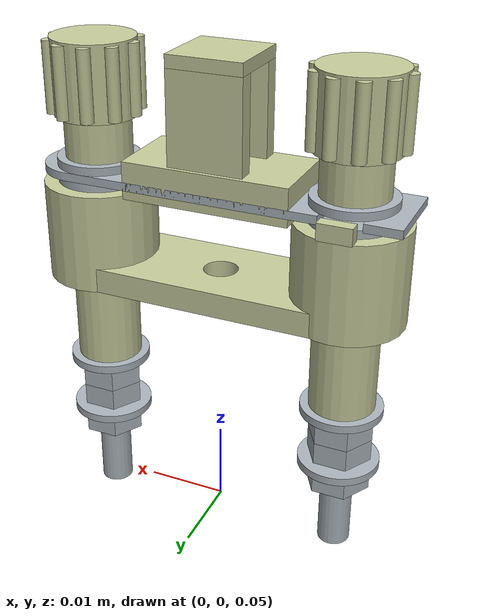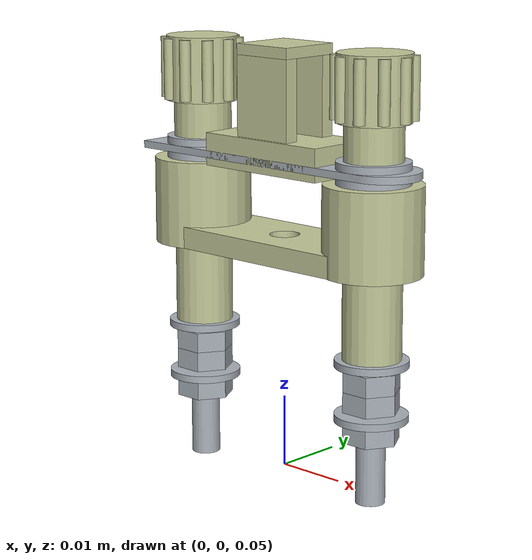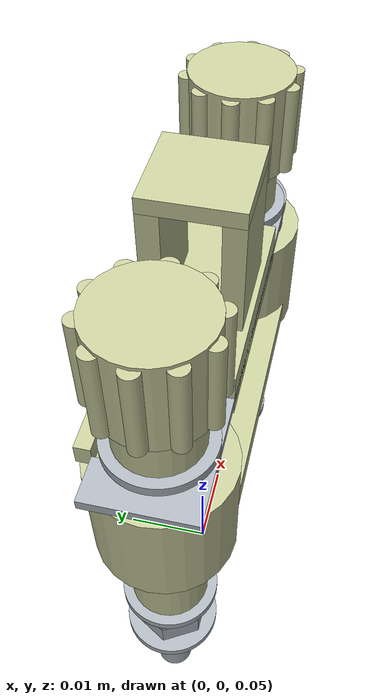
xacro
<?xml version="1.0"?>
<robot name="yaban" xmlns:xacro="http://www.ros.org/wiki/xacro">
  <xacro:arg name="world_fixed" default="true"/>
  <xacro:arg name="enable_plugin" default="true"/>
  <xacro:arg name="demo_control" default="false"/>
  <xacro:arg name="prefix" default="yaban_"/>
  <xacro:arg name="robot_namespace" default="/yaban"/>
  <xacro:arg name="mount_xyz" default="0 0 0.08"/>
  <xacro:arg name="mount_rpy" default="0 0 0"/>
  <xacro:include filename="$(find yaban_gazebo)/urdf/yaban_macro.xacro"/>
  <link name="$(arg prefix)mount_link"/>
  <xacro:if value="$(arg world_fixed)">
    <link name="world"/>
    <joint name="$(arg prefix)world_mount" type="fixed"><parent link="world"/><child link="$(arg prefix)mount_link"/>
      <origin xyz="$(arg mount_xyz)" rpy="$(arg mount_rpy)"/>
    </joint>
  </xacro:if>
  <xacro:yaban parent="$(arg prefix)mount_link" prefix="$(arg prefix)" robot_namespace="$(arg robot_namespace)"
     enable_plugin="$(arg enable_plugin)" demo_control="$(arg demo_control)">
    <origin xyz="0 0 0" rpy="0 0 0"/>
  </xacro:yaban>
</robot>

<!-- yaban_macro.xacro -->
<robot xmlns:xacro="http://www.ros.org/wiki/xacro">
  <!-- SI units. Shape dimensions are deliberately explicit; see docs/modeling.md. -->
  <xacro:macro name="yb_inertia" params="m sx sy sz xyz">
    <inertial><origin xyz="${xyz}"/><mass value="${m}"/>
      <inertia ixx="${m*(sy*sy+sz*sz)/12}" ixy="0" ixz="0"
               iyy="${m*(sx*sx+sz*sz)/12}" iyz="0" izz="${m*(sx*sx+sy*sy)/12}"/>
    </inertial>
  </xacro:macro>
  <xacro:macro name="yb_box" params="name xyz size material collision:=true">
    <visual><origin xyz="${xyz}"/><geometry><box size="${size}"/></geometry><material name="${material}"/></visual>
    <xacro:if value="${collision}"><collision><origin xyz="${xyz}"/><geometry><box size="${size}"/></geometry></collision></xacro:if>
  </xacro:macro>
  <xacro:macro name="yb_cylinder" params="name xyz radius length material collision:=true">
    <visual><origin xyz="${xyz}"/><geometry><cylinder radius="${radius}" length="${length}"/></geometry><material name="${material}"/></visual>
    <xacro:if value="${collision}"><collision><origin xyz="${xyz}"/><geometry><cylinder radius="${radius}" length="${length}"/></geometry></collision></xacro:if>
  </xacro:macro>
  <xacro:macro name="yb_mesh" params="name file xyz material">
    <visual><origin xyz="${xyz}"/><geometry><mesh filename="package://yaban_gazebo/meshes/${file}.stl"/></geometry><material name="${material}"/></visual>
  </xacro:macro>
  <xacro:macro name="yb_box_collision" params="name xyz size rpy:='0 0 0'">
    <collision><origin xyz="${xyz}" rpy="${rpy}"/><geometry><box size="${size}"/></geometry></collision>
  </xacro:macro>
  <xacro:macro name="yb_ring_collision" params="name x radius width thickness n:=16 i:=0">
    <xacro:if value="${i &lt; n}">
      <xacro:property name="a" value="${2*pi*i/n}"/>
      <xacro:yb_box_collision name="${name}_${i}" xyz="${x+radius*cos(a)} ${radius*sin(a)} 0"
        size="${width} ${2*radius*tan(pi/n)} ${thickness}" rpy="0 0 ${a}"/>
      <xacro:yb_ring_collision name="${name}" x="${x}" radius="${radius}" width="${width}" thickness="${thickness}" n="${n}" i="${i+1}"/>
    </xacro:if>
  </xacro:macro>
  <xacro:macro name="yb_ribs" params="prefix material i:=0">
    <xacro:if value="${i &lt; 10}">
      <xacro:property name="a" value="${2*pi*i/10}"/>
      <!-- Main cap OD10; ribs increase maximum grasp envelope to OD11.6 mm. -->
      <xacro:yb_cylinder name="${prefix}rib_${i}" xyz="${0.005*cos(a)} ${0.005*sin(a)} 0.0095"
        radius="0.0008" length="0.0084" material="${material}"/>
      <xacro:yb_ribs prefix="${prefix}" material="${material}" i="${i+1}"/>
    </xacro:if>
  </xacro:macro>
  <xacro:macro name="yb_knob_geometry" params="prefix material">
    <!-- Local zero at underside of the neck: z=15 mm in the tightened assembly. -->
    <xacro:yb_cylinder name="${prefix}neck" xyz="0 0 0.0025" radius="0.004" length="0.005" material="${material}"/>
    <xacro:yb_cylinder name="${prefix}cap" xyz="0 0 0.0095" radius="0.005" length="0.009" material="${material}"/>
    <xacro:yb_ribs prefix="${prefix}" material="${material}"/>
  </xacro:macro>
  <xacro:macro name="yb_surface" params="link material">
    <gazebo reference="${link}">
      <visual><material>
        <ambient>${'0.48 0.51 0.54 1' if material == 'Gazebo/Grey' else '0.55 0.58 0.42 1'}</ambient>
        <diffuse>${'0.68 0.71 0.74 1' if material == 'Gazebo/Grey' else '0.78 0.80 0.61 1'}</diffuse>
        <specular>0.25 0.25 0.25 1</specular>
      </material></visual>
      <gravity>false</gravity>
      <selfCollide>false</selfCollide><mu1>0.7</mu1><mu2>0.7</mu2>
      <kp>100000</kp><kd>1</kd><maxVel>0.01</maxVel><minDepth>0.00001</minDepth>
    </gazebo>
  </xacro:macro>

  <xacro:macro name="yaban" params="parent prefix:=yaban_ robot_namespace:=/yaban enable_plugin:=true demo_control:=false *origin">
    <xacro:property name="spacing" value="0.0315"/>
    <xacro:property name="ivory" value="${prefix}ivory"/>
    <xacro:property name="steel" value="${prefix}steel"/>
    <material name="${ivory}"><color rgba="0.78 0.80 0.61 1"/></material>
    <material name="${steel}"><color rgba="0.68 0.71 0.74 1"/></material>
    <link name="${prefix}base_link">
      <xacro:yb_inertia m="0.025" sx="0.045" sy="0.0135" sz="0.0435" xyz="0 0 -0.007"/>
      <xacro:yb_cylinder name="left_pillar" xyz="${-spacing/2} 0 0.006" radius="0.00675" length="0.012" material="${ivory}"/>
      <xacro:yb_cylinder name="right_pillar" xyz="${spacing/2} 0 0.006" radius="0.00675" length="0.012" material="${ivory}"/>
      <xacro:yb_mesh name="bridge" file="base_bridge" xyz="0 0 0.0015" material="${ivory}"/>
      <xacro:yb_box_collision name="bridge_left" xyz="-0.008925 0 0.0015" size="0.01365 0.0125 0.003"/>
      <xacro:yb_box_collision name="bridge_right" xyz="0.008925 0 0.0015" size="0.01365 0.0125 0.003"/>
      <xacro:yb_box_collision name="bridge_front" xyz="0 -0.004175 0.0015" size="0.0042 0.00415 0.003"/>
      <xacro:yb_box_collision name="bridge_back" xyz="0 0.004175 0.0015" size="0.0042 0.00415 0.003"/>
      <xacro:yb_cylinder name="left_rear_sleeve" xyz="${-spacing/2} 0 -0.00575" radius="0.004" length="0.0115" material="${ivory}"/>
      <xacro:yb_cylinder name="right_rear_sleeve" xyz="${spacing/2} 0 -0.00575" radius="0.004" length="0.0115" material="${ivory}"/>
      <!-- Molded stop tab sits on the opposite side of the free-end opening path. -->
      <xacro:yb_box name="left_stop" xyz="${-spacing/2} 0.006 0.013" size="0.004 0.0015 0.002" material="${ivory}"/>
    </link>
    <joint name="${prefix}mount_joint" type="fixed"><parent link="${parent}"/><child link="${prefix}base_link"/><xacro:insert_block name="origin"/></joint>
    <xacro:yb_surface link="${prefix}base_link" material="Gazebo/Beige"/>

    <xacro:macro name="yb_terminal" params="side x">
      <link name="${prefix}${side}_terminal_link">
        <xacro:yb_inertia m="0.008" sx="0.008" sy="0.008" sz="0.05" xyz="0 0 -0.006"/>
        <xacro:yb_cylinder name="${side}_stud" xyz="0 0 -0.005" radius="0.002" length="0.053" material="${steel}"/>
        <xacro:yb_mesh name="${side}_contact_lower" file="washer" xyz="0 0 0.0125" material="${steel}"/>
        <xacro:yb_mesh name="${side}_rear_washer1" file="washer" xyz="0 0 -0.012" material="${steel}"/>
        <xacro:yb_mesh name="${side}_rear_nut1" file="nut_m4" xyz="0 0 -0.0144" material="${steel}"/>
        <xacro:yb_mesh name="${side}_rear_nut2" file="nut_m4" xyz="0 0 -0.0172" material="${steel}"/>
        <xacro:yb_mesh name="${side}_rear_washer2" file="washer" xyz="0 0 -0.0195" material="${steel}"/>
        <xacro:yb_mesh name="${side}_rear_nut3" file="nut_m4" xyz="0 0 -0.0214" material="${steel}"/>
      </link>
      <joint name="${prefix}${side}_terminal_mount" type="fixed"><parent link="${prefix}base_link"/><child link="${prefix}${side}_terminal_link"/><origin xyz="${x} 0 0"/></joint>
      <xacro:yb_surface link="${prefix}${side}_terminal_link" material="Gazebo/Grey"/>
    </xacro:macro>
    <xacro:yb_terminal side="left" x="${-spacing/2}"/>
    <xacro:yb_terminal side="right" x="${spacing/2}"/>

    <!-- 0.7 mm/revolution helical motion represented by a revolute+prismatic pair. -->
    <link name="${prefix}left_knob_carrier_link">
      <xacro:yb_inertia m="0.0005" sx="0.004" sy="0.004" sz="0.002" xyz="0 0 0"/>
    </link>
    <joint name="${prefix}left_knob_joint" type="revolute">
      <parent link="${prefix}base_link"/><child link="${prefix}left_knob_carrier_link"/>
      <origin xyz="${-spacing/2} 0 0.015"/><axis xyz="0 0 1"/>
      <limit lower="0" upper="${4*pi}" effort="0.15" velocity="3.141592654"/>
      <dynamics damping="0.00001" friction="0.00005"/>
    </joint>
    <link name="${prefix}left_knob_link">
      <xacro:yb_inertia m="0.003" sx="0.0116" sy="0.0116" sz="0.014" xyz="0 0 0.008"/>
      <xacro:yb_knob_geometry prefix="left_" material="${ivory}"/>
    </link>
    <joint name="${prefix}left_knob_lift_joint" type="prismatic">
      <parent link="${prefix}left_knob_carrier_link"/><child link="${prefix}left_knob_link"/>
      <axis xyz="0 0 1"/><limit lower="0" upper="0.0014" effort="20" velocity="0.001"/>
      <mimic joint="${prefix}left_knob_joint" multiplier="${0.0007/(2*pi)}" offset="0"/>
    </joint>
    <link name="${prefix}left_upper_washer_link">
      <xacro:yb_inertia m="0.0004" sx="0.01" sy="0.01" sz="0.001" xyz="0 0 0"/>
      <xacro:yb_mesh name="left_upper_washer" file="washer" xyz="0 0 0" material="${steel}"/>
    </link>
    <joint name="${prefix}left_upper_washer_mount" type="fixed"><parent link="${prefix}left_knob_link"/><child link="${prefix}left_upper_washer_link"/><origin xyz="0 0 -0.0005"/></joint>
    <xacro:yb_surface link="${prefix}left_knob_carrier_link" material="Gazebo/Beige"/>
    <xacro:yb_surface link="${prefix}left_knob_link" material="Gazebo/Beige"/>
    <xacro:yb_surface link="${prefix}left_upper_washer_link" material="Gazebo/Grey"/>

    <link name="${prefix}right_knob_link">
      <xacro:yb_inertia m="0.003" sx="0.0116" sy="0.0116" sz="0.014" xyz="0 0 0.008"/>
      <xacro:yb_knob_geometry prefix="right_" material="${ivory}"/>
    </link>
    <joint name="${prefix}right_knob_mount" type="fixed"><parent link="${prefix}base_link"/><child link="${prefix}right_knob_link"/><origin xyz="${spacing/2} 0 0.015"/></joint>
    <link name="${prefix}right_upper_washer_link">
      <xacro:yb_inertia m="0.0004" sx="0.01" sy="0.01" sz="0.001" xyz="0 0 0"/>
      <xacro:yb_mesh name="right_upper_washer" file="washer" xyz="0 0 0" material="${steel}"/>
    </link>
    <joint name="${prefix}right_upper_washer_mount" type="fixed"><parent link="${prefix}right_knob_link"/><child link="${prefix}right_upper_washer_link"/><origin xyz="0 0 -0.0005"/></joint>
    <xacro:yb_surface link="${prefix}right_knob_link" material="Gazebo/Beige"/>
    <xacro:yb_surface link="${prefix}right_upper_washer_link" material="Gazebo/Grey"/>

    <link name="${prefix}blade_link">
      <xacro:yb_inertia m="0.0033" sx="0.045" sy="0.010" sz="0.001" xyz="${-spacing/2} 0 0"/>
      <xacro:yb_mesh name="blade" file="blade" xyz="0 0 0" material="${steel}"/>
      <!-- Convex collision pieces preserve the lateral U opening and pivot hole. -->
      <xacro:yb_box_collision name="blade_main" xyz="-0.01505 0 0" size="0.0227 0.010 0.001"/>
      <xacro:yb_box_collision name="fork_bottom" xyz="-0.032325 -0.00375 0" size="0.01185 0.0025 0.001"/>
      <xacro:yb_box_collision name="fork_outer" xyz="-0.036125 0.00125 0" size="0.00425 0.0075 0.001"/>
      <xacro:yb_box_collision name="fork_inner" xyz="-0.0277 0.00125 0" size="0.0026 0.0075 0.001"/>
      <xacro:yb_ring_collision name="pivot" x="0" radius="0.0037" width="0.0026" thickness="0.001"/>
    </link>
    <joint name="${prefix}blade_joint" type="revolute">
      <parent link="${prefix}base_link"/><child link="${prefix}blade_link"/>
      <origin xyz="${spacing/2} 0 0.0135"/><axis xyz="0 0 1"/>
      <limit lower="0" upper="${2*pi/3}" effort="0.08" velocity="1"/>
      <dynamics damping="0.00001" friction="0.00002"/>
    </joint>
    <xacro:yb_surface link="${prefix}blade_link" material="Gazebo/Grey"/>
    <link name="${prefix}handle_link">
      <xacro:yb_inertia m="0.002" sx="0.020" sy="0.010" sz="0.017" xyz="0 0 0.005"/>
      <!-- Sleeve: z=12..16.5. Handle above it: 12.5 mm, top at z=29. -->
      <xacro:yb_box name="insulating_sleeve" xyz="0 0 0.00075" size="0.020 0.010 0.0045" material="${ivory}"/>
      <xacro:yb_box name="handle_front_wall" xyz="0 -0.0035 0.0085" size="0.009 0.002 0.011" material="${ivory}"/>
      <xacro:yb_box name="handle_back_wall" xyz="0 0.0035 0.0085" size="0.009 0.002 0.011" material="${ivory}"/>
      <xacro:yb_box name="handle_top" xyz="0 0 0.01475" size="0.009 0.009 0.0015" material="${ivory}"/>
    </link>
    <joint name="${prefix}handle_mount" type="fixed"><parent link="${prefix}blade_link"/><child link="${prefix}handle_link"/><origin xyz="${-spacing/2} 0 0"/></joint>
    <xacro:yb_surface link="${prefix}handle_link" material="Gazebo/Beige"/>
    <!-- Stable task frames: all normals point out of the cabinet (+Z). -->
    <link name="${prefix}knob_grasp_frame"/>
    <joint name="${prefix}knob_grasp_mount" type="fixed"><parent link="${prefix}left_knob_link"/><child link="${prefix}knob_grasp_frame"/><origin xyz="0 0 0.0095"/></joint>
    <link name="${prefix}handle_grasp_frame"/>
    <joint name="${prefix}handle_grasp_mount" type="fixed"><parent link="${prefix}handle_link"/><child link="${prefix}handle_grasp_frame"/><origin xyz="0 0 0.010"/></joint>

    <xacro:if value="${enable_plugin}">
      <gazebo><plugin name="${prefix}interaction" filename="libyaban_interaction_plugin.so">
        <jointPrefix>${prefix}</jointPrefix><robotNamespace>${robot_namespace}</robotNamespace>
        <screwPitch>0.0007</screwPitch><releaseTurns>0.5</releaseTurns><demoControl>${demo_control}</demoControl>
      </plugin></gazebo>
    </xacro:if>
  </xacro:macro>
</robot>
